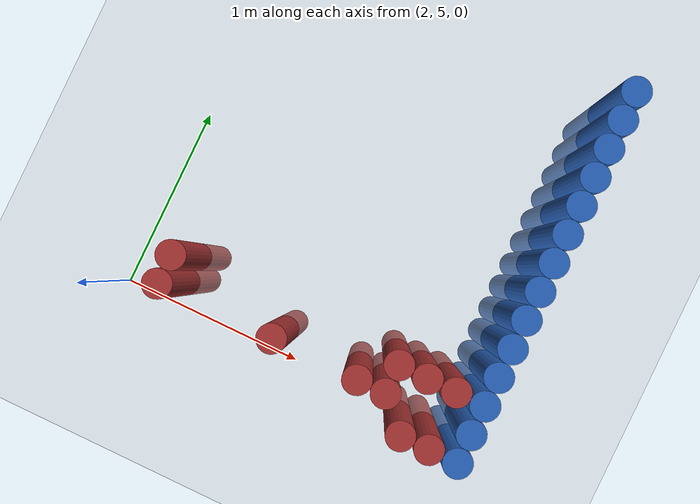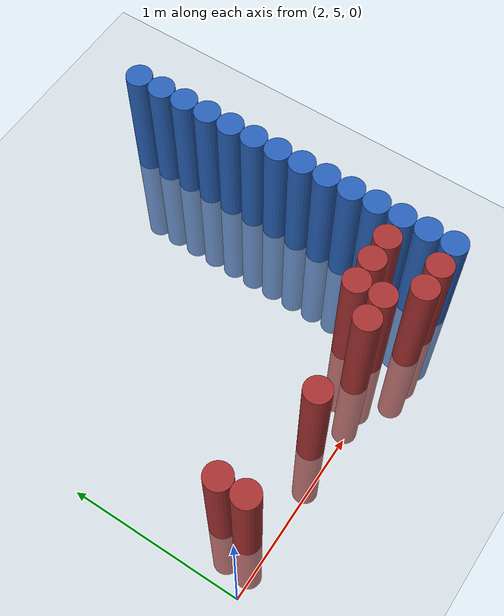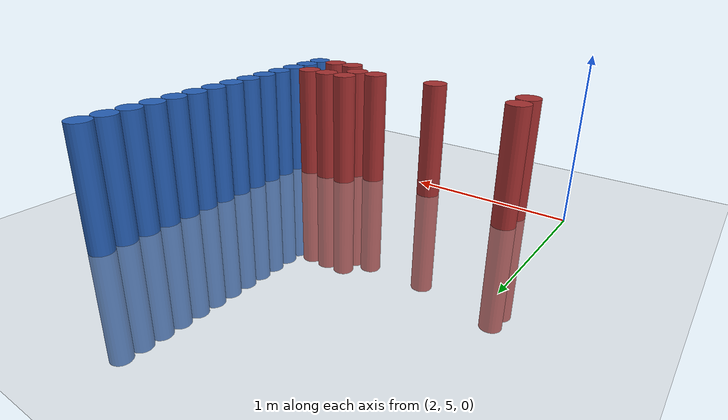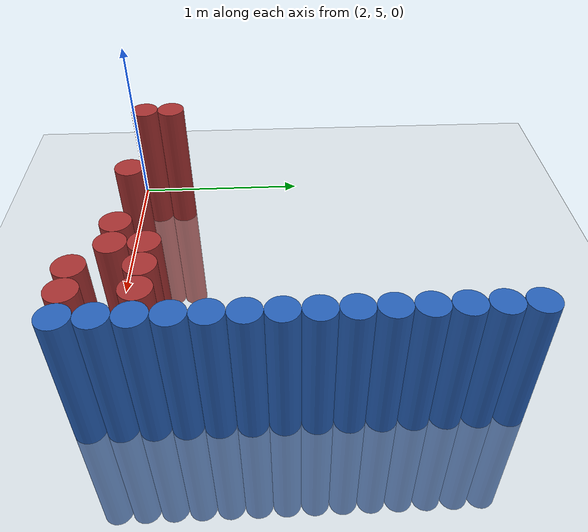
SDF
<sdf version="1.6">
 <world name="default">
  <model name="ground_plane">
   <static>1</static>
   <link name="link">
    <collision name="collision">
     <geometry><plane><normal>0 0 1</normal><size>100 100</size></plane></geometry>
     <surface><friction><ode><mu>100</mu><mu2>50</mu2></ode></friction></surface>
    </collision>
    <visual name="visual">
     <cast_shadows>0</cast_shadows>
     <geometry><plane><normal>0 0 1</normal><size>100 100</size></plane></geometry>
     <material>
      <script><uri>file://media/materials/scripts/gazebo.material</uri><name>Gazebo/Grey</name></script>
     </material>
    </visual>
   </link>
  </model>
  <model name="unit_cylinder_180">
   <static>1</static>
   <pose>3.925000 4.975000 0.000000 0.000000 0.000000 0.000000</pose>
   <link name="link">
    <inertial>
     <mass>1</mass>
     <inertia><ixx>0.145833</ixx><ixy>0</ixy><ixz>0</ixz><iyy>0.145833</iyy><iyz>0</iyz><izz>0.125</izz></inertia>
    </inertial>
    <collision name="collision">
     <geometry><cylinder><radius>0.075000</radius><length>1.5</length></cylinder></geometry>
    </collision>
    <visual name="visual">
     <geometry><cylinder><radius>0.075000</radius><length>1.5</length></cylinder></geometry>
     <material>
      <ambient>0.152000 0.379000 0.720000 1</ambient>
      <diffuse>0.152000 0.379000 0.720000 1</diffuse>
     </material>
     <material>
      <script><name>Gazebo/Grey</name><uri>file://media/materials/scripts/gazebo.material</uri></script>
     </material>
    </visual>
   </link>
  </model>
  <model name="unit_cylinder_182">
   <static>1</static>
   <pose>3.925000 5.125000 0.000000 0.000000 0.000000 0.000000</pose>
   <link name="link">
    <inertial>
     <mass>1</mass>
     <inertia><ixx>0.145833</ixx><ixy>0</ixy><ixz>0</ixz><iyy>0.145833</iyy><iyz>0</iyz><izz>0.125</izz></inertia>
    </inertial>
    <collision name="collision">
     <geometry><cylinder><radius>0.075000</radius><length>1.5</length></cylinder></geometry>
    </collision>
    <visual name="visual">
     <geometry><cylinder><radius>0.075000</radius><length>1.5</length></cylinder></geometry>
     <material>
      <ambient>0.152000 0.379000 0.720000 1</ambient>
      <diffuse>0.152000 0.379000 0.720000 1</diffuse>
     </material>
     <material>
      <script><name>Gazebo/Grey</name><uri>file://media/materials/scripts/gazebo.material</uri></script>
     </material>
    </visual>
   </link>
  </model>
  <model name="unit_cylinder_184">
   <static>1</static>
   <pose>3.925000 5.275000 0.000000 0.000000 0.000000 0.000000</pose>
   <link name="link">
    <inertial>
     <mass>1</mass>
     <inertia><ixx>0.145833</ixx><ixy>0</ixy><ixz>0</ixz><iyy>0.145833</iyy><iyz>0</iyz><izz>0.125</izz></inertia>
    </inertial>
    <collision name="collision">
     <geometry><cylinder><radius>0.075000</radius><length>1.5</length></cylinder></geometry>
    </collision>
    <visual name="visual">
     <geometry><cylinder><radius>0.075000</radius><length>1.5</length></cylinder></geometry>
     <material>
      <ambient>0.152000 0.379000 0.720000 1</ambient>
      <diffuse>0.152000 0.379000 0.720000 1</diffuse>
     </material>
     <material>
      <script><name>Gazebo/Grey</name><uri>file://media/materials/scripts/gazebo.material</uri></script>
     </material>
    </visual>
   </link>
  </model>
  <model name="unit_cylinder_186">
   <static>1</static>
   <pose>3.925000 5.425000 0.000000 0.000000 0.000000 0.000000</pose>
   <link name="link">
    <inertial>
     <mass>1</mass>
     <inertia><ixx>0.145833</ixx><ixy>0</ixy><ixz>0</ixz><iyy>0.145833</iyy><iyz>0</iyz><izz>0.125</izz></inertia>
    </inertial>
    <collision name="collision">
     <geometry><cylinder><radius>0.075000</radius><length>1.5</length></cylinder></geometry>
    </collision>
    <visual name="visual">
     <geometry><cylinder><radius>0.075000</radius><length>1.5</length></cylinder></geometry>
     <material>
      <ambient>0.152000 0.379000 0.720000 1</ambient>
      <diffuse>0.152000 0.379000 0.720000 1</diffuse>
     </material>
     <material>
      <script><name>Gazebo/Grey</name><uri>file://media/materials/scripts/gazebo.material</uri></script>
     </material>
    </visual>
   </link>
  </model>
  <model name="unit_cylinder_188">
   <static>1</static>
   <pose>3.925000 5.575000 0.000000 0.000000 0.000000 0.000000</pose>
   <link name="link">
    <inertial>
     <mass>1</mass>
     <inertia><ixx>0.145833</ixx><ixy>0</ixy><ixz>0</ixz><iyy>0.145833</iyy><iyz>0</iyz><izz>0.125</izz></inertia>
    </inertial>
    <collision name="collision">
     <geometry><cylinder><radius>0.075000</radius><length>1.5</length></cylinder></geometry>
    </collision>
    <visual name="visual">
     <geometry><cylinder><radius>0.075000</radius><length>1.5</length></cylinder></geometry>
     <material>
      <ambient>0.152000 0.379000 0.720000 1</ambient>
      <diffuse>0.152000 0.379000 0.720000 1</diffuse>
     </material>
     <material>
      <script><name>Gazebo/Grey</name><uri>file://media/materials/scripts/gazebo.material</uri></script>
     </material>
    </visual>
   </link>
  </model>
  <model name="unit_cylinder_190">
   <static>1</static>
   <pose>3.925000 5.725000 0.000000 0.000000 0.000000 0.000000</pose>
   <link name="link">
    <inertial>
     <mass>1</mass>
     <inertia><ixx>0.145833</ixx><ixy>0</ixy><ixz>0</ixz><iyy>0.145833</iyy><iyz>0</iyz><izz>0.125</izz></inertia>
    </inertial>
    <collision name="collision">
     <geometry><cylinder><radius>0.075000</radius><length>1.5</length></cylinder></geometry>
    </collision>
    <visual name="visual">
     <geometry><cylinder><radius>0.075000</radius><length>1.5</length></cylinder></geometry>
     <material>
      <ambient>0.152000 0.379000 0.720000 1</ambient>
      <diffuse>0.152000 0.379000 0.720000 1</diffuse>
     </material>
     <material>
      <script><name>Gazebo/Grey</name><uri>file://media/materials/scripts/gazebo.material</uri></script>
     </material>
    </visual>
   </link>
  </model>
  <model name="unit_cylinder_192">
   <static>1</static>
   <pose>3.925000 5.875000 0.000000 0.000000 0.000000 0.000000</pose>
   <link name="link">
    <inertial>
     <mass>1</mass>
     <inertia><ixx>0.145833</ixx><ixy>0</ixy><ixz>0</ixz><iyy>0.145833</iyy><iyz>0</iyz><izz>0.125</izz></inertia>
    </inertial>
    <collision name="collision">
     <geometry><cylinder><radius>0.075000</radius><length>1.5</length></cylinder></geometry>
    </collision>
    <visual name="visual">
     <geometry><cylinder><radius>0.075000</radius><length>1.5</length></cylinder></geometry>
     <material>
      <ambient>0.152000 0.379000 0.720000 1</ambient>
      <diffuse>0.152000 0.379000 0.720000 1</diffuse>
     </material>
     <material>
      <script><name>Gazebo/Grey</name><uri>file://media/materials/scripts/gazebo.material</uri></script>
     </material>
    </visual>
   </link>
  </model>
  <model name="unit_cylinder_194">
   <static>1</static>
   <pose>3.925000 6.025000 0.000000 0.000000 0.000000 0.000000</pose>
   <link name="link">
    <inertial>
     <mass>1</mass>
     <inertia><ixx>0.145833</ixx><ixy>0</ixy><ixz>0</ixz><iyy>0.145833</iyy><iyz>0</iyz><izz>0.125</izz></inertia>
    </inertial>
    <collision name="collision">
     <geometry><cylinder><radius>0.075000</radius><length>1.5</length></cylinder></geometry>
    </collision>
    <visual name="visual">
     <geometry><cylinder><radius>0.075000</radius><length>1.5</length></cylinder></geometry>
     <material>
      <ambient>0.152000 0.379000 0.720000 1</ambient>
      <diffuse>0.152000 0.379000 0.720000 1</diffuse>
     </material>
     <material>
      <script><name>Gazebo/Grey</name><uri>file://media/materials/scripts/gazebo.material</uri></script>
     </material>
    </visual>
   </link>
  </model>
  <model name="unit_cylinder_196">
   <static>1</static>
   <pose>3.925000 6.175000 0.000000 0.000000 0.000000 0.000000</pose>
   <link name="link">
    <inertial>
     <mass>1</mass>
     <inertia><ixx>0.145833</ixx><ixy>0</ixy><ixz>0</ixz><iyy>0.145833</iyy><iyz>0</iyz><izz>0.125</izz></inertia>
    </inertial>
    <collision name="collision">
     <geometry><cylinder><radius>0.075000</radius><length>1.5</length></cylinder></geometry>
    </collision>
    <visual name="visual">
     <geometry><cylinder><radius>0.075000</radius><length>1.5</length></cylinder></geometry>
     <material>
      <ambient>0.152000 0.379000 0.720000 1</ambient>
      <diffuse>0.152000 0.379000 0.720000 1</diffuse>
     </material>
     <material>
      <script><name>Gazebo/Grey</name><uri>file://media/materials/scripts/gazebo.material</uri></script>
     </material>
    </visual>
   </link>
  </model>
  <model name="unit_cylinder_198">
   <static>1</static>
   <pose>3.925000 6.325000 0.000000 0.000000 0.000000 0.000000</pose>
   <link name="link">
    <inertial>
     <mass>1</mass>
     <inertia><ixx>0.145833</ixx><ixy>0</ixy><ixz>0</ixz><iyy>0.145833</iyy><iyz>0</iyz><izz>0.125</izz></inertia>
    </inertial>
    <collision name="collision">
     <geometry><cylinder><radius>0.075000</radius><length>1.5</length></cylinder></geometry>
    </collision>
    <visual name="visual">
     <geometry><cylinder><radius>0.075000</radius><length>1.5</length></cylinder></geometry>
     <material>
      <ambient>0.152000 0.379000 0.720000 1</ambient>
      <diffuse>0.152000 0.379000 0.720000 1</diffuse>
     </material>
     <material>
      <script><name>Gazebo/Grey</name><uri>file://media/materials/scripts/gazebo.material</uri></script>
     </material>
    </visual>
   </link>
  </model>
  <model name="unit_cylinder_200">
   <static>1</static>
   <pose>3.925000 6.475000 0.000000 0.000000 0.000000 0.000000</pose>
   <link name="link">
    <inertial>
     <mass>1</mass>
     <inertia><ixx>0.145833</ixx><ixy>0</ixy><ixz>0</ixz><iyy>0.145833</iyy><iyz>0</iyz><izz>0.125</izz></inertia>
    </inertial>
    <collision name="collision">
     <geometry><cylinder><radius>0.075000</radius><length>1.5</length></cylinder></geometry>
    </collision>
    <visual name="visual">
     <geometry><cylinder><radius>0.075000</radius><length>1.5</length></cylinder></geometry>
     <material>
      <ambient>0.152000 0.379000 0.720000 1</ambient>
      <diffuse>0.152000 0.379000 0.720000 1</diffuse>
     </material>
     <material>
      <script><name>Gazebo/Grey</name><uri>file://media/materials/scripts/gazebo.material</uri></script>
     </material>
    </visual>
   </link>
  </model>
  <model name="unit_cylinder_202">
   <static>1</static>
   <pose>3.925000 6.625000 0.000000 0.000000 0.000000 0.000000</pose>
   <link name="link">
    <inertial>
     <mass>1</mass>
     <inertia><ixx>0.145833</ixx><ixy>0</ixy><ixz>0</ixz><iyy>0.145833</iyy><iyz>0</iyz><izz>0.125</izz></inertia>
    </inertial>
    <collision name="collision">
     <geometry><cylinder><radius>0.075000</radius><length>1.5</length></cylinder></geometry>
    </collision>
    <visual name="visual">
     <geometry><cylinder><radius>0.075000</radius><length>1.5</length></cylinder></geometry>
     <material>
      <ambient>0.152000 0.379000 0.720000 1</ambient>
      <diffuse>0.152000 0.379000 0.720000 1</diffuse>
     </material>
     <material>
      <script><name>Gazebo/Grey</name><uri>file://media/materials/scripts/gazebo.material</uri></script>
     </material>
    </visual>
   </link>
  </model>
  <model name="unit_cylinder_204">
   <static>1</static>
   <pose>3.925000 6.775000 0.000000 0.000000 0.000000 0.000000</pose>
   <link name="link">
    <inertial>
     <mass>1</mass>
     <inertia><ixx>0.145833</ixx><ixy>0</ixy><ixz>0</ixz><iyy>0.145833</iyy><iyz>0</iyz><izz>0.125</izz></inertia>
    </inertial>
    <collision name="collision">
     <geometry><cylinder><radius>0.075000</radius><length>1.5</length></cylinder></geometry>
    </collision>
    <visual name="visual">
     <geometry><cylinder><radius>0.075000</radius><length>1.5</length></cylinder></geometry>
     <material>
      <ambient>0.152000 0.379000 0.720000 1</ambient>
      <diffuse>0.152000 0.379000 0.720000 1</diffuse>
     </material>
     <material>
      <script><name>Gazebo/Grey</name><uri>file://media/materials/scripts/gazebo.material</uri></script>
     </material>
    </visual>
   </link>
  </model>
  <model name="unit_cylinder_206">
   <static>1</static>
   <pose>3.925000 6.925000 0.000000 0.000000 0.000000 0.000000</pose>
   <link name="link">
    <inertial>
     <mass>1</mass>
     <inertia><ixx>0.145833</ixx><ixy>0</ixy><ixz>0</ixz><iyy>0.145833</iyy><iyz>0</iyz><izz>0.125</izz></inertia>
    </inertial>
    <collision name="collision">
     <geometry><cylinder><radius>0.075000</radius><length>1.5</length></cylinder></geometry>
    </collision>
    <visual name="visual">
     <geometry><cylinder><radius>0.075000</radius><length>1.5</length></cylinder></geometry>
     <material>
      <ambient>0.152000 0.379000 0.720000 1</ambient>
      <diffuse>0.152000 0.379000 0.720000 1</diffuse>
     </material>
     <material>
      <script><name>Gazebo/Grey</name><uri>file://media/materials/scripts/gazebo.material</uri></script>
     </material>
    </visual>
   </link>
  </model>
  <model name="unit_cylinder_388">
   <static>1</static>
   <pose>2.275000 5.125000 0.000000 0.000000 0.000000 0.000000</pose>
   <link name="link">
    <inertial>
     <mass>1</mass>
     <inertia><ixx>0.145833</ixx><ixy>0</ixy><ixz>0</ixz><iyy>0.145833</iyy><iyz>0</iyz><izz>0.125</izz></inertia>
    </inertial>
    <collision name="collision">
     <geometry><cylinder><radius>0.075000</radius><length>1.5</length></cylinder></geometry>
    </collision>
    <visual name="visual">
     <geometry><cylinder><radius>0.075000</radius><length>1.5</length></cylinder></geometry>
     <material>
      <ambient>0.648000 0.192000 0.192000 1</ambient>
      <diffuse>0.648000 0.192000 0.192000 1</diffuse>
     </material>
     <material>
      <script><name>Gazebo/Grey</name><uri>file://media/materials/scripts/gazebo.material</uri></script>
     </material>
    </visual>
   </link>
  </model>
  <model name="unit_cylinder_389">
   <static>1</static>
   <pose>2.275000 5.275000 0.000000 0.000000 0.000000 0.000000</pose>
   <link name="link">
    <inertial>
     <mass>1</mass>
     <inertia><ixx>0.145833</ixx><ixy>0</ixy><ixz>0</ixz><iyy>0.145833</iyy><iyz>0</iyz><izz>0.125</izz></inertia>
    </inertial>
    <collision name="collision">
     <geometry><cylinder><radius>0.075000</radius><length>1.5</length></cylinder></geometry>
    </collision>
    <visual name="visual">
     <geometry><cylinder><radius>0.075000</radius><length>1.5</length></cylinder></geometry>
     <material>
      <ambient>0.648000 0.192000 0.192000 1</ambient>
      <diffuse>0.648000 0.192000 0.192000 1</diffuse>
     </material>
     <material>
      <script><name>Gazebo/Grey</name><uri>file://media/materials/scripts/gazebo.material</uri></script>
     </material>
    </visual>
   </link>
  </model>
  <model name="unit_cylinder_400">
   <static>1</static>
   <pose>2.875000 5.125000 0.000000 0.000000 0.000000 0.000000</pose>
   <link name="link">
    <inertial>
     <mass>1</mass>
     <inertia><ixx>0.145833</ixx><ixy>0</ixy><ixz>0</ixz><iyy>0.145833</iyy><iyz>0</iyz><izz>0.125</izz></inertia>
    </inertial>
    <collision name="collision">
     <geometry><cylinder><radius>0.075000</radius><length>1.5</length></cylinder></geometry>
    </collision>
    <visual name="visual">
     <geometry><cylinder><radius>0.075000</radius><length>1.5</length></cylinder></geometry>
     <material>
      <ambient>0.648000 0.192000 0.192000 1</ambient>
      <diffuse>0.648000 0.192000 0.192000 1</diffuse>
     </material>
     <material>
      <script><name>Gazebo/Grey</name><uri>file://media/materials/scripts/gazebo.material</uri></script>
     </material>
    </visual>
   </link>
  </model>
  <model name="unit_cylinder_410">
   <static>1</static>
   <pose>3.325000 5.125000 0.000000 0.000000 0.000000 0.000000</pose>
   <link name="link">
    <inertial>
     <mass>1</mass>
     <inertia><ixx>0.145833</ixx><ixy>0</ixy><ixz>0</ixz><iyy>0.145833</iyy><iyz>0</iyz><izz>0.125</izz></inertia>
    </inertial>
    <collision name="collision">
     <geometry><cylinder><radius>0.075000</radius><length>1.5</length></cylinder></geometry>
    </collision>
    <visual name="visual">
     <geometry><cylinder><radius>0.075000</radius><length>1.5</length></cylinder></geometry>
     <material>
      <ambient>0.648000 0.192000 0.192000 1</ambient>
      <diffuse>0.648000 0.192000 0.192000 1</diffuse>
     </material>
     <material>
      <script><name>Gazebo/Grey</name><uri>file://media/materials/scripts/gazebo.material</uri></script>
     </material>
    </visual>
   </link>
  </model>
  <model name="unit_cylinder_414">
   <static>1</static>
   <pose>3.475000 5.125000 0.000000 0.000000 0.000000 0.000000</pose>
   <link name="link">
    <inertial>
     <mass>1</mass>
     <inertia><ixx>0.145833</ixx><ixy>0</ixy><ixz>0</ixz><iyy>0.145833</iyy><iyz>0</iyz><izz>0.125</izz></inertia>
    </inertial>
    <collision name="collision">
     <geometry><cylinder><radius>0.075000</radius><length>1.5</length></cylinder></geometry>
    </collision>
    <visual name="visual">
     <geometry><cylinder><radius>0.075000</radius><length>1.5</length></cylinder></geometry>
     <material>
      <ambient>0.648000 0.192000 0.192000 1</ambient>
      <diffuse>0.648000 0.192000 0.192000 1</diffuse>
     </material>
     <material>
      <script><name>Gazebo/Grey</name><uri>file://media/materials/scripts/gazebo.material</uri></script>
     </material>
    </visual>
   </link>
  </model>
  <model name="unit_cylinder_415">
   <static>1</static>
   <pose>3.475000 5.275000 0.000000 0.000000 0.000000 0.000000</pose>
   <link name="link">
    <inertial>
     <mass>1</mass>
     <inertia><ixx>0.145833</ixx><ixy>0</ixy><ixz>0</ixz><iyy>0.145833</iyy><iyz>0</iyz><izz>0.125</izz></inertia>
    </inertial>
    <collision name="collision">
     <geometry><cylinder><radius>0.075000</radius><length>1.5</length></cylinder></geometry>
    </collision>
    <visual name="visual">
     <geometry><cylinder><radius>0.075000</radius><length>1.5</length></cylinder></geometry>
     <material>
      <ambient>0.648000 0.192000 0.192000 1</ambient>
      <diffuse>0.648000 0.192000 0.192000 1</diffuse>
     </material>
     <material>
      <script><name>Gazebo/Grey</name><uri>file://media/materials/scripts/gazebo.material</uri></script>
     </material>
    </visual>
   </link>
  </model>
  <model name="unit_cylinder_420">
   <static>1</static>
   <pose>3.625000 4.975000 0.000000 0.000000 0.000000 0.000000</pose>
   <link name="link">
    <inertial>
     <mass>1</mass>
     <inertia><ixx>0.145833</ixx><ixy>0</ixy><ixz>0</ixz><iyy>0.145833</iyy><iyz>0</iyz><izz>0.125</izz></inertia>
    </inertial>
    <collision name="collision">
     <geometry><cylinder><radius>0.075000</radius><length>1.5</length></cylinder></geometry>
    </collision>
    <visual name="visual">
     <geometry><cylinder><radius>0.075000</radius><length>1.5</length></cylinder></geometry>
     <material>
      <ambient>0.648000 0.192000 0.192000 1</ambient>
      <diffuse>0.648000 0.192000 0.192000 1</diffuse>
     </material>
     <material>
      <script><name>Gazebo/Grey</name><uri>file://media/materials/scripts/gazebo.material</uri></script>
     </material>
    </visual>
   </link>
  </model>
  <model name="unit_cylinder_421">
   <static>1</static>
   <pose>3.625000 5.275000 0.000000 0.000000 0.000000 0.000000</pose>
   <link name="link">
    <inertial>
     <mass>1</mass>
     <inertia><ixx>0.145833</ixx><ixy>0</ixy><ixz>0</ixz><iyy>0.145833</iyy><iyz>0</iyz><izz>0.125</izz></inertia>
    </inertial>
    <collision name="collision">
     <geometry><cylinder><radius>0.075000</radius><length>1.5</length></cylinder></geometry>
    </collision>
    <visual name="visual">
     <geometry><cylinder><radius>0.075000</radius><length>1.5</length></cylinder></geometry>
     <material>
      <ambient>0.648000 0.192000 0.192000 1</ambient>
      <diffuse>0.648000 0.192000 0.192000 1</diffuse>
     </material>
     <material>
      <script><name>Gazebo/Grey</name><uri>file://media/materials/scripts/gazebo.material</uri></script>
     </material>
    </visual>
   </link>
  </model>
  <model name="unit_cylinder_437">
   <static>1</static>
   <pose>3.775000 4.975000 0.000000 0.000000 0.000000 0.000000</pose>
   <link name="link">
    <inertial>
     <mass>1</mass>
     <inertia><ixx>0.145833</ixx><ixy>0</ixy><ixz>0</ixz><iyy>0.145833</iyy><iyz>0</iyz><izz>0.125</izz></inertia>
    </inertial>
    <collision name="collision">
     <geometry><cylinder><radius>0.075000</radius><length>1.5</length></cylinder></geometry>
    </collision>
    <visual name="visual">
     <geometry><cylinder><radius>0.075000</radius><length>1.5</length></cylinder></geometry>
     <material>
      <ambient>0.648000 0.192000 0.192000 1</ambient>
      <diffuse>0.648000 0.192000 0.192000 1</diffuse>
     </material>
     <material>
      <script><name>Gazebo/Grey</name><uri>file://media/materials/scripts/gazebo.material</uri></script>
     </material>
    </visual>
   </link>
  </model>
  <model name="unit_cylinder_438">
   <static>1</static>
   <pose>3.775000 5.275000 0.000000 0.000000 0.000000 0.000000</pose>
   <link name="link">
    <inertial>
     <mass>1</mass>
     <inertia><ixx>0.145833</ixx><ixy>0</ixy><ixz>0</ixz><iyy>0.145833</iyy><iyz>0</iyz><izz>0.125</izz></inertia>
    </inertial>
    <collision name="collision">
     <geometry><cylinder><radius>0.075000</radius><length>1.5</length></cylinder></geometry>
    </collision>
    <visual name="visual">
     <geometry><cylinder><radius>0.075000</radius><length>1.5</length></cylinder></geometry>
     <material>
      <ambient>0.648000 0.192000 0.192000 1</ambient>
      <diffuse>0.648000 0.192000 0.192000 1</diffuse>
     </material>
     <material>
      <script><name>Gazebo/Grey</name><uri>file://media/materials/scripts/gazebo.material</uri></script>
     </material>
    </visual>
   </link>
  </model>
  <model name="unit_cylinder_485">
   <static>1</static>
   <pose>3.925000 4.975000 0.000000 0.000000 0.000000 0.000000</pose>
   <link name="link">
    <inertial>
     <mass>1</mass>
     <inertia><ixx>0.145833</ixx><ixy>0</ixy><ixz>0</ixz><iyy>0.145833</iyy><iyz>0</iyz><izz>0.125</izz></inertia>
    </inertial>
    <collision name="collision">
     <geometry><cylinder><radius>0.075000</radius><length>1.5</length></cylinder></geometry>
    </collision>
    <visual name="visual">
     <geometry><cylinder><radius>0.075000</radius><length>1.5</length></cylinder></geometry>
     <material>
      <ambient>0.152000 0.379000 0.720000 1</ambient>
      <diffuse>0.152000 0.379000 0.720000 1</diffuse>
     </material>
     <material>
      <script><name>Gazebo/Grey</name><uri>file://media/materials/scripts/gazebo.material</uri></script>
     </material>
    </visual>
   </link>
  </model>
  <model name="unit_cylinder_486">
   <static>1</static>
   <pose>3.925000 5.125000 0.000000 0.000000 0.000000 0.000000</pose>
   <link name="link">
    <inertial>
     <mass>1</mass>
     <inertia><ixx>0.145833</ixx><ixy>0</ixy><ixz>0</ixz><iyy>0.145833</iyy><iyz>0</iyz><izz>0.125</izz></inertia>
    </inertial>
    <collision name="collision">
     <geometry><cylinder><radius>0.075000</radius><length>1.5</length></cylinder></geometry>
    </collision>
    <visual name="visual">
     <geometry><cylinder><radius>0.075000</radius><length>1.5</length></cylinder></geometry>
     <material>
      <ambient>0.152000 0.379000 0.720000 1</ambient>
      <diffuse>0.152000 0.379000 0.720000 1</diffuse>
     </material>
     <material>
      <script><name>Gazebo/Grey</name><uri>file://media/materials/scripts/gazebo.material</uri></script>
     </material>
    </visual>
   </link>
  </model>
  <model name="unit_cylinder_487">
   <static>1</static>
   <pose>3.925000 5.275000 0.000000 0.000000 0.000000 0.000000</pose>
   <link name="link">
    <inertial>
     <mass>1</mass>
     <inertia><ixx>0.145833</ixx><ixy>0</ixy><ixz>0</ixz><iyy>0.145833</iyy><iyz>0</iyz><izz>0.125</izz></inertia>
    </inertial>
    <collision name="collision">
     <geometry><cylinder><radius>0.075000</radius><length>1.5</length></cylinder></geometry>
    </collision>
    <visual name="visual">
     <geometry><cylinder><radius>0.075000</radius><length>1.5</length></cylinder></geometry>
     <material>
      <ambient>0.152000 0.379000 0.720000 1</ambient>
      <diffuse>0.152000 0.379000 0.720000 1</diffuse>
     </material>
     <material>
      <script><name>Gazebo/Grey</name><uri>file://media/materials/scripts/gazebo.material</uri></script>
     </material>
    </visual>
   </link>
  </model>
  <model name="unit_cylinder_488">
   <static>1</static>
   <pose>3.925000 5.425000 0.000000 0.000000 0.000000 0.000000</pose>
   <link name="link">
    <inertial>
     <mass>1</mass>
     <inertia><ixx>0.145833</ixx><ixy>0</ixy><ixz>0</ixz><iyy>0.145833</iyy><iyz>0</iyz><izz>0.125</izz></inertia>
    </inertial>
    <collision name="collision">
     <geometry><cylinder><radius>0.075000</radius><length>1.5</length></cylinder></geometry>
    </collision>
    <visual name="visual">
     <geometry><cylinder><radius>0.075000</radius><length>1.5</length></cylinder></geometry>
     <material>
      <ambient>0.152000 0.379000 0.720000 1</ambient>
      <diffuse>0.152000 0.379000 0.720000 1</diffuse>
     </material>
     <material>
      <script><name>Gazebo/Grey</name><uri>file://media/materials/scripts/gazebo.material</uri></script>
     </material>
    </visual>
   </link>
  </model>
 </world>
</sdf>
